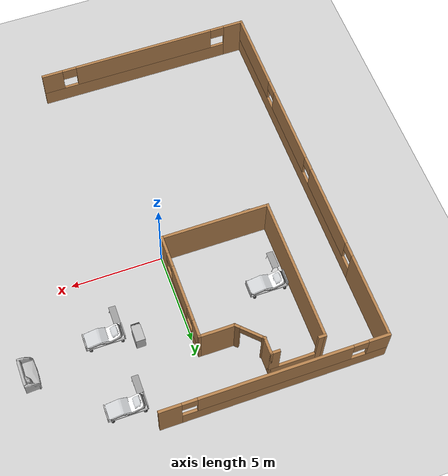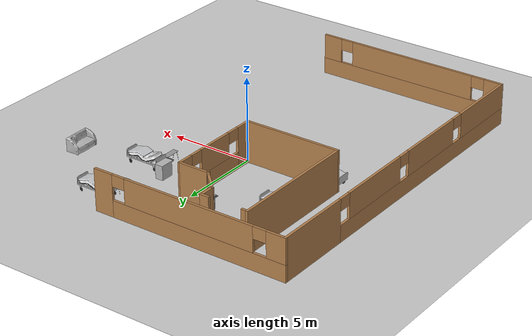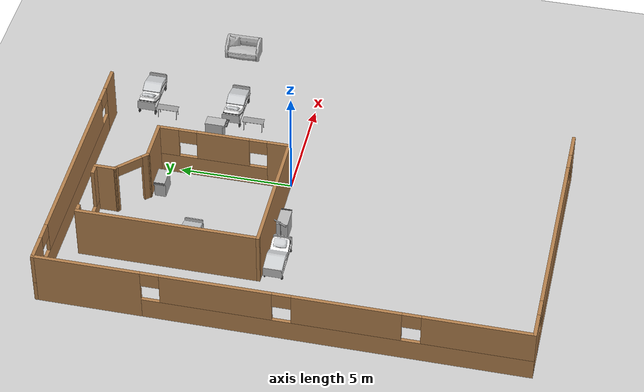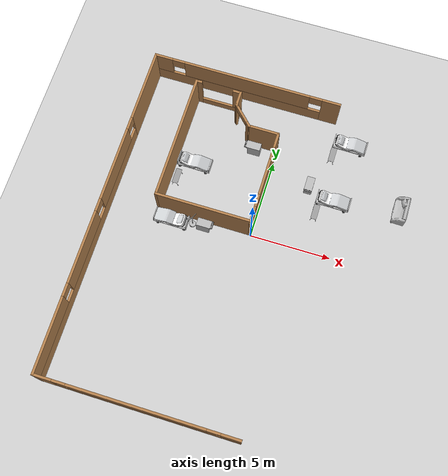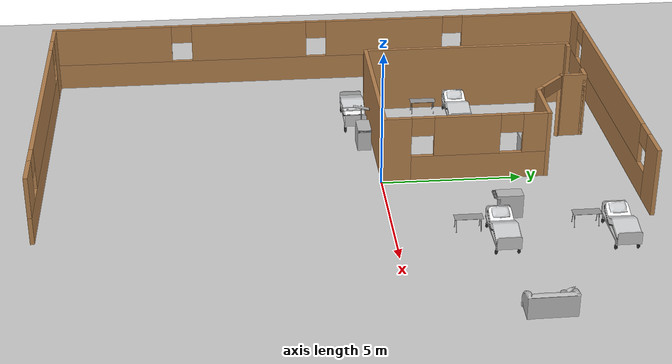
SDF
<sdf version="1.6">
 <world name="default">
  <model name="ground_plane">
   <static>1</static>
   <link name="link">
    <collision name="collision">
     <geometry><plane><normal>0 0 1</normal><size>100 100</size></plane></geometry>
     <surface>
      <contact><collide_bitmask>65535</collide_bitmask></contact>
      <friction><ode><mu>100</mu><mu2>50</mu2></ode></friction>
     </surface>
    </collision>
    <visual name="visual">
     <cast_shadows>0</cast_shadows>
     <geometry><plane><normal>0 0 1</normal><size>100 100</size></plane></geometry>
     <material>
      <script><uri>file://media/materials/scripts/gazebo.material</uri><name>Gazebo/Grey</name></script>
     </material>
    </visual>
   </link>
  </model>
  <model name="hospital_room_empty">
   <link name="Wall_0">
    <pose>-4e-06 -3.9165 0 0 -0 0</pose>
    <visual name="Wall_0_Visual">
     <pose>0 0 1.25 0 -0 0</pose>
     <geometry><box><size>6 0.15 2.5</size></box></geometry>
     <material>
      <script><uri>file://media/materials/scripts/gazebo.material</uri><name>Gazebo/Wood</name></script>
      <ambient>1 1 1 1</ambient>
     </material>
     <meta><layer>0</layer></meta>
    </visual>
    <collision name="Wall_0_Collision">
     <pose>0 0 1.25 0 -0 0</pose>
     <geometry><box><size>6 0.15 2.5</size></box></geometry>
     <surface>
      <friction>
       <ode><mu>1</mu><mu2>1</mu2><fdir1>0 0 0</fdir1><slip1>0</slip1><slip2>0</slip2></ode>
       <torsional>
        <coefficient>1</coefficient>
        <patch_radius>0</patch_radius>
        <surface_radius>0</surface_radius>
        <use_patch_radius>1</use_patch_radius>
        <ode><slip>0</slip></ode>
       </torsional>
      </friction>
      <bounce><restitution_coefficient>0</restitution_coefficient><threshold>1e+06</threshold></bounce>
      <contact>
       <collide_without_contact>0</collide_without_contact>
       <collide_without_contact_bitmask>1</collide_without_contact_bitmask>
       <collide_bitmask>1</collide_bitmask>
       <ode>
        <soft_cfm>0</soft_cfm>
        <soft_erp>0.2</soft_erp>
        <kp>1e+13</kp>
        <kd>1</kd>
        <max_vel>0.01</max_vel>
        <min_depth>0</min_depth>
       </ode>
       <bullet>
        <split_impulse>1</split_impulse>
        <split_impulse_penetration_threshold>-0.01</split_impulse_penetration_threshold>
        <soft_cfm>0</soft_cfm>
        <soft_erp>0.2</soft_erp>
        <kp>1e+13</kp>
        <kd>1</kd>
       </bullet>
      </contact>
     </surface>
    </collision>
   </link>
   <link name="Wall_3">
    <pose>-2.925 0 0 0 -0 1.5708</pose>
    <visual name="Wall_3_Visual">
     <pose>0 0 1.25 0 -0 0</pose>
     <geometry><box><size>7.98302 0.15 2.5</size></box></geometry>
     <material>
      <script><uri>file://media/materials/scripts/gazebo.material</uri><name>Gazebo/Wood</name></script>
      <ambient>1 1 1 1</ambient>
     </material>
     <meta><layer>0</layer></meta>
    </visual>
    <collision name="Wall_3_Collision">
     <pose>0 0 1.25 0 -0 0</pose>
     <geometry><box><size>7.98302 0.15 2.5</size></box></geometry>
     <surface>
      <friction>
       <ode><mu>1</mu><mu2>1</mu2><fdir1>0 0 0</fdir1><slip1>0</slip1><slip2>0</slip2></ode>
       <torsional>
        <coefficient>1</coefficient>
        <patch_radius>0</patch_radius>
        <surface_radius>0</surface_radius>
        <use_patch_radius>1</use_patch_radius>
        <ode><slip>0</slip></ode>
       </torsional>
      </friction>
      <bounce><restitution_coefficient>0</restitution_coefficient><threshold>1e+06</threshold></bounce>
      <contact>
       <collide_without_contact>0</collide_without_contact>
       <collide_without_contact_bitmask>1</collide_without_contact_bitmask>
       <collide_bitmask>1</collide_bitmask>
       <ode>
        <soft_cfm>0</soft_cfm>
        <soft_erp>0.2</soft_erp>
        <kp>1e+13</kp>
        <kd>1</kd>
        <max_vel>0.01</max_vel>
        <min_depth>0</min_depth>
       </ode>
       <bullet>
        <split_impulse>1</split_impulse>
        <split_impulse_penetration_threshold>-0.01</split_impulse_penetration_threshold>
        <soft_cfm>0</soft_cfm>
        <soft_erp>0.2</soft_erp>
        <kp>1e+13</kp>
        <kd>1</kd>
       </bullet>
      </contact>
     </surface>
    </collision>
   </link>
   <link name="Wall_4">
    <pose>-1.5 3.9165 0 0 -0 0</pose>
    <visual name="Wall_4_Visual_0">
     <pose>-1.28125 0 1.25 0 -0 0</pose>
     <geometry><box><size>0.437506 0.15 2.5</size></box></geometry>
     <material>
      <script><uri>file://media/materials/scripts/gazebo.material</uri><name>Gazebo/Wood</name></script>
      <ambient>1 1 1 1</ambient>
     </material>
     <meta><layer>0</layer></meta>
    </visual>
    <visual name="Wall_4_Visual_1">
     <pose>0.218753 0 0.25 0 -0 0</pose>
     <geometry><box><size>2.56249 0.15 0.5</size></box></geometry>
     <material>
      <script><uri>file://media/materials/scripts/gazebo.material</uri><name>Gazebo/Wood</name></script>
      <ambient>1 1 1 1</ambient>
     </material>
     <meta><layer>0</layer></meta>
    </visual>
    <visual name="Wall_4_Visual_2">
     <pose>1.21875 0 1.5 0 -0 0</pose>
     <geometry><box><size>0.562494 0.15 2</size></box></geometry>
     <material>
      <script><uri>file://media/materials/scripts/gazebo.material</uri><name>Gazebo/Wood</name></script>
      <ambient>1 1 1 1</ambient>
     </material>
     <meta><layer>0</layer></meta>
    </visual>
    <collision name="Wall_4_Collision_0">
     <pose>-1.28125 0 1.25 0 -0 0</pose>
     <geometry><box><size>0.437506 0.15 2.5</size></box></geometry>
     <surface>
      <friction>
       <ode><mu>1</mu><mu2>1</mu2><fdir1>0 0 0</fdir1><slip1>0</slip1><slip2>0</slip2></ode>
       <torsional>
        <coefficient>1</coefficient>
        <patch_radius>0</patch_radius>
        <surface_radius>0</surface_radius>
        <use_patch_radius>1</use_patch_radius>
        <ode><slip>0</slip></ode>
       </torsional>
      </friction>
      <bounce><restitution_coefficient>0</restitution_coefficient><threshold>1e+06</threshold></bounce>
      <contact>
       <collide_without_contact>0</collide_without_contact>
       <collide_without_contact_bitmask>1</collide_without_contact_bitmask>
       <collide_bitmask>1</collide_bitmask>
       <ode>
        <soft_cfm>0</soft_cfm>
        <soft_erp>0.2</soft_erp>
        <kp>1e+13</kp>
        <kd>1</kd>
        <max_vel>0.01</max_vel>
        <min_depth>0</min_depth>
       </ode>
       <bullet>
        <split_impulse>1</split_impulse>
        <split_impulse_penetration_threshold>-0.01</split_impulse_penetration_threshold>
        <soft_cfm>0</soft_cfm>
        <soft_erp>0.2</soft_erp>
        <kp>1e+13</kp>
        <kd>1</kd>
       </bullet>
      </contact>
     </surface>
    </collision>
    <collision name="Wall_4_Collision_1">
     <pose>0.218753 0 0.25 0 -0 0</pose>
     <geometry><box><size>2.56249 0.15 0.5</size></box></geometry>
     <surface>
      <friction>
       <ode><mu>1</mu><mu2>1</mu2><fdir1>0 0 0</fdir1><slip1>0</slip1><slip2>0</slip2></ode>
       <torsional>
        <coefficient>1</coefficient>
        <patch_radius>0</patch_radius>
        <surface_radius>0</surface_radius>
        <use_patch_radius>1</use_patch_radius>
        <ode><slip>0</slip></ode>
       </torsional>
      </friction>
      <bounce><restitution_coefficient>0</restitution_coefficient><threshold>1e+06</threshold></bounce>
      <contact>
       <collide_without_contact>0</collide_without_contact>
       <collide_without_contact_bitmask>1</collide_without_contact_bitmask>
       <collide_bitmask>1</collide_bitmask>
       <ode>
        <soft_cfm>0</soft_cfm>
        <soft_erp>0.2</soft_erp>
        <kp>1e+13</kp>
        <kd>1</kd>
        <max_vel>0.01</max_vel>
        <min_depth>0</min_depth>
       </ode>
       <bullet>
        <split_impulse>1</split_impulse>
        <split_impulse_penetration_threshold>-0.01</split_impulse_penetration_threshold>
        <soft_cfm>0</soft_cfm>
        <soft_erp>0.2</soft_erp>
        <kp>1e+13</kp>
        <kd>1</kd>
       </bullet>
      </contact>
     </surface>
    </collision>
    <collision name="Wall_4_Collision_2">
     <pose>1.21875 0 1.5 0 -0 0</pose>
     <geometry><box><size>0.562494 0.15 2</size></box></geometry>
     <surface>
      <friction>
       <ode><mu>1</mu><mu2>1</mu2><fdir1>0 0 0</fdir1><slip1>0</slip1><slip2>0</slip2></ode>
       <torsional>
        <coefficient>1</coefficient>
        <patch_radius>0</patch_radius>
        <surface_radius>0</surface_radius>
        <use_patch_radius>1</use_patch_radius>
        <ode><slip>0</slip></ode>
       </torsional>
      </friction>
      <bounce><restitution_coefficient>0</restitution_coefficient><threshold>1e+06</threshold></bounce>
      <contact>
       <collide_without_contact>0</collide_without_contact>
       <collide_without_contact_bitmask>1</collide_without_contact_bitmask>
       <collide_bitmask>1</collide_bitmask>
       <ode>
        <soft_cfm>0</soft_cfm>
        <soft_erp>0.2</soft_erp>
        <kp>1e+13</kp>
        <kd>1</kd>
        <max_vel>0.01</max_vel>
        <min_depth>0</min_depth>
       </ode>
       <bullet>
        <split_impulse>1</split_impulse>
        <split_impulse_penetration_threshold>-0.01</split_impulse_penetration_threshold>
        <soft_cfm>0</soft_cfm>
        <soft_erp>0.2</soft_erp>
        <kp>1e+13</kp>
        <kd>1</kd>
       </bullet>
      </contact>
     </surface>
    </collision>
   </link>
   <link name="Wall_5">
    <pose>-0.075004 3.4915 0 0 0 -1.5708</pose>
    <visual name="Wall_5_Visual">
     <pose>0 0 1.25 0 -0 0</pose>
     <geometry><box><size>1 0.15 2.5</size></box></geometry>
     <material>
      <script><uri>file://media/materials/scripts/gazebo.material</uri><name>Gazebo/Wood</name></script>
      <ambient>1 1 1 1</ambient>
     </material>
     <meta><layer>0</layer></meta>
    </visual>
    <collision name="Wall_5_Collision">
     <pose>0 0 1.25 0 -0 0</pose>
     <geometry><box><size>1 0.15 2.5</size></box></geometry>
     <surface>
      <friction>
       <ode><mu>1</mu><mu2>1</mu2><fdir1>0 0 0</fdir1><slip1>0</slip1><slip2>0</slip2></ode>
       <torsional>
        <coefficient>1</coefficient>
        <patch_radius>0</patch_radius>
        <surface_radius>0</surface_radius>
        <use_patch_radius>1</use_patch_radius>
        <ode><slip>0</slip></ode>
       </torsional>
      </friction>
      <bounce><restitution_coefficient>0</restitution_coefficient><threshold>1e+06</threshold></bounce>
      <contact>
       <collide_without_contact>0</collide_without_contact>
       <collide_without_contact_bitmask>1</collide_without_contact_bitmask>
       <collide_bitmask>1</collide_bitmask>
       <ode>
        <soft_cfm>0</soft_cfm>
        <soft_erp>0.2</soft_erp>
        <kp>1e+13</kp>
        <kd>1</kd>
        <max_vel>0.01</max_vel>
        <min_depth>0</min_depth>
       </ode>
       <bullet>
        <split_impulse>1</split_impulse>
        <split_impulse_penetration_threshold>-0.01</split_impulse_penetration_threshold>
        <soft_cfm>0</soft_cfm>
        <soft_erp>0.2</soft_erp>
        <kp>1e+13</kp>
        <kd>1</kd>
       </bullet>
      </contact>
     </surface>
    </collision>
   </link>
   <link name="Wall_7">
    <pose>2.925 -1 0 0 -0 1.5708</pose>
    <visual name="Wall_7_Visual_0">
     <pose>-2.47597 0 1.25 0 -0 0</pose>
     <geometry><box><size>1.03106 0.15 2.5</size></box></geometry>
     <material>
      <script><uri>file://media/materials/scripts/gazebo.material</uri><name>Gazebo/Wood</name></script>
      <ambient>0.921569 0.807843 0.615686 1</ambient>
     </material>
     <meta><layer>0</layer></meta>
    </visual>
    <visual name="Wall_7_Visual_1">
     <pose>0.515531 0 0.5 0 -0 0</pose>
     <geometry><box><size>4.95194 0.15 1</size></box></geometry>
     <material>
      <script><uri>file://media/materials/scripts/gazebo.material</uri><name>Gazebo/Wood</name></script>
      <ambient>0.921569 0.807843 0.615686 1</ambient>
     </material>
     <meta><layer>0</layer></meta>
    </visual>
    <visual name="Wall_7_Visual_2">
     <pose>0.016139 0 1.75 0 -0 0</pose>
     <geometry><box><size>2.35315 0.15 1.5</size></box></geometry>
     <material>
      <script><uri>file://media/materials/scripts/gazebo.material</uri><name>Gazebo/Wood</name></script>
      <ambient>0.921569 0.807843 0.615686 1</ambient>
     </material>
     <meta><layer>0</layer></meta>
    </visual>
    <visual name="Wall_7_Visual_3">
     <pose>2.49211 0 1.75 0 -0 0</pose>
     <geometry><box><size>0.998785 0.15 1.5</size></box></geometry>
     <material>
      <script><uri>file://media/materials/scripts/gazebo.material</uri><name>Gazebo/Wood</name></script>
      <ambient>0.921569 0.807843 0.615686 1</ambient>
     </material>
     <meta><layer>0</layer></meta>
    </visual>
    <visual name="Wall_7_Visual_4">
     <pose>-1.56044 0 2.15 0 -0 0</pose>
     <geometry><box><size>0.8 0.15 0.7</size></box></geometry>
     <material>
      <script><uri>file://media/materials/scripts/gazebo.material</uri><name>Gazebo/Wood</name></script>
      <ambient>0.921569 0.807843 0.615686 1</ambient>
     </material>
     <meta><layer>0</layer></meta>
    </visual>
    <visual name="Wall_7_Visual_5">
     <pose>1.59272 0 2.15 0 -0 0</pose>
     <geometry><box><size>0.8 0.15 0.7</size></box></geometry>
     <material>
      <script><uri>file://media/materials/scripts/gazebo.material</uri><name>Gazebo/Wood</name></script>
      <ambient>0.921569 0.807843 0.615686 1</ambient>
     </material>
     <meta><layer>0</layer></meta>
    </visual>
    <collision name="Wall_7_Collision_0">
     <pose>-2.47597 0 1.25 0 -0 0</pose>
     <geometry><box><size>1.03106 0.15 2.5</size></box></geometry>
     <surface>
      <friction>
       <ode><mu>1</mu><mu2>1</mu2><fdir1>0 0 0</fdir1><slip1>0</slip1><slip2>0</slip2></ode>
       <torsional>
        <coefficient>1</coefficient>
        <patch_radius>0</patch_radius>
        <surface_radius>0</surface_radius>
        <use_patch_radius>1</use_patch_radius>
        <ode><slip>0</slip></ode>
       </torsional>
      </friction>
      <bounce><restitution_coefficient>0</restitution_coefficient><threshold>1e+06</threshold></bounce>
      <contact>
       <collide_without_contact>0</collide_without_contact>
       <collide_without_contact_bitmask>1</collide_without_contact_bitmask>
       <collide_bitmask>1</collide_bitmask>
       <ode>
        <soft_cfm>0</soft_cfm>
        <soft_erp>0.2</soft_erp>
        <kp>1e+13</kp>
        <kd>1</kd>
        <max_vel>0.01</max_vel>
        <min_depth>0</min_depth>
       </ode>
       <bullet>
        <split_impulse>1</split_impulse>
        <split_impulse_penetration_threshold>-0.01</split_impulse_penetration_threshold>
        <soft_cfm>0</soft_cfm>
        <soft_erp>0.2</soft_erp>
        <kp>1e+13</kp>
        <kd>1</kd>
       </bullet>
      </contact>
     </surface>
    </collision>
    <collision name="Wall_7_Collision_1">
     <pose>0.515531 0 0.5 0 -0 0</pose>
     <geometry><box><size>4.95194 0.15 1</size></box></geometry>
     <surface>
      <friction>
       <ode><mu>1</mu><mu2>1</mu2><fdir1>0 0 0</fdir1><slip1>0</slip1><slip2>0</slip2></ode>
       <torsional>
        <coefficient>1</coefficient>
        <patch_radius>0</patch_radius>
        <surface_radius>0</surface_radius>
        <use_patch_radius>1</use_patch_radius>
        <ode><slip>0</slip></ode>
       </torsional>
      </friction>
      <bounce><restitution_coefficient>0</restitution_coefficient><threshold>1e+06</threshold></bounce>
      <contact>
       <collide_without_contact>0</collide_without_contact>
       <collide_without_contact_bitmask>1</collide_without_contact_bitmask>
       <collide_bitmask>1</collide_bitmask>
       <ode>
        <soft_cfm>0</soft_cfm>
        <soft_erp>0.2</soft_erp>
        <kp>1e+13</kp>
        <kd>1</kd>
        <max_vel>0.01</max_vel>
        <min_depth>0</min_depth>
       </ode>
       <bullet>
        <split_impulse>1</split_impulse>
        <split_impulse_penetration_threshold>-0.01</split_impulse_penetration_threshold>
        <soft_cfm>0</soft_cfm>
        <soft_erp>0.2</soft_erp>
        <kp>1e+13</kp>
        <kd>1</kd>
       </bullet>
      </contact>
     </surface>
    </collision>
    <collision name="Wall_7_Collision_2">
     <pose>0.016139 0 1.75 0 -0 0</pose>
     <geometry><box><size>2.35315 0.15 1.5</size></box></geometry>
     <surface>
      <friction>
       <ode><mu>1</mu><mu2>1</mu2><fdir1>0 0 0</fdir1><slip1>0</slip1><slip2>0</slip2></ode>
       <torsional>
        <coefficient>1</coefficient>
        <patch_radius>0</patch_radius>
        <surface_radius>0</surface_radius>
        <use_patch_radius>1</use_patch_radius>
        <ode><slip>0</slip></ode>
       </torsional>
      </friction>
      <bounce><restitution_coefficient>0</restitution_coefficient><threshold>1e+06</threshold></bounce>
      <contact>
       <collide_without_contact>0</collide_without_contact>
       <collide_without_contact_bitmask>1</collide_without_contact_bitmask>
       <collide_bitmask>1</collide_bitmask>
       <ode>
        <soft_cfm>0</soft_cfm>
        <soft_erp>0.2</soft_erp>
        <kp>1e+13</kp>
        <kd>1</kd>
        <max_vel>0.01</max_vel>
        <min_depth>0</min_depth>
       </ode>
       <bullet>
        <split_impulse>1</split_impulse>
        <split_impulse_penetration_threshold>-0.01</split_impulse_penetration_threshold>
        <soft_cfm>0</soft_cfm>
        <soft_erp>0.2</soft_erp>
        <kp>1e+13</kp>
        <kd>1</kd>
       </bullet>
      </contact>
     </surface>
    </collision>
    <collision name="Wall_7_Collision_3">
     <pose>2.49211 0 1.75 0 -0 0</pose>
     <geometry><box><size>0.998785 0.15 1.5</size></box></geometry>
     <surface>
      <friction>
       <ode><mu>1</mu><mu2>1</mu2><fdir1>0 0 0</fdir1><slip1>0</slip1><slip2>0</slip2></ode>
       <torsional>
        <coefficient>1</coefficient>
        <patch_radius>0</patch_radius>
        <surface_radius>0</surface_radius>
        <use_patch_radius>1</use_patch_radius>
        <ode><slip>0</slip></ode>
       </torsional>
      </friction>
      <bounce><restitution_coefficient>0</restitution_coefficient><threshold>1e+06</threshold></bounce>
      <contact>
       <collide_without_contact>0</collide_without_contact>
       <collide_without_contact_bitmask>1</collide_without_contact_bitmask>
       <collide_bitmask>1</collide_bitmask>
       <ode>
        <soft_cfm>0</soft_cfm>
        <soft_erp>0.2</soft_erp>
        <kp>1e+13</kp>
        <kd>1</kd>
        <max_vel>0.01</max_vel>
        <min_depth>0</min_depth>
       </ode>
       <bullet>
        <split_impulse>1</split_impulse>
        <split_impulse_penetration_threshold>-0.01</split_impulse_penetration_threshold>
        <soft_cfm>0</soft_cfm>
        <soft_erp>0.2</soft_erp>
        <kp>1e+13</kp>
        <kd>1</kd>
       </bullet>
      </contact>
     </surface>
    </collision>
    <collision name="Wall_7_Collision_4">
     <pose>-1.56044 0 2.15 0 -0 0</pose>
     <geometry><box><size>0.8 0.15 0.7</size></box></geometry>
     <surface>
      <friction>
       <ode><mu>1</mu><mu2>1</mu2><fdir1>0 0 0</fdir1><slip1>0</slip1><slip2>0</slip2></ode>
       <torsional>
        <coefficient>1</coefficient>
        <patch_radius>0</patch_radius>
        <surface_radius>0</surface_radius>
        <use_patch_radius>1</use_patch_radius>
        <ode><slip>0</slip></ode>
       </torsional>
      </friction>
      <bounce><restitution_coefficient>0</restitution_coefficient><threshold>1e+06</threshold></bounce>
      <contact>
       <collide_without_contact>0</collide_without_contact>
       <collide_without_contact_bitmask>1</collide_without_contact_bitmask>
       <collide_bitmask>1</collide_bitmask>
       <ode>
        <soft_cfm>0</soft_cfm>
        <soft_erp>0.2</soft_erp>
        <kp>1e+13</kp>
        <kd>1</kd>
        <max_vel>0.01</max_vel>
        <min_depth>0</min_depth>
       </ode>
       <bullet>
        <split_impulse>1</split_impulse>
        <split_impulse_penetration_threshold>-0.01</split_impulse_penetration_threshold>
        <soft_cfm>0</soft_cfm>
        <soft_erp>0.2</soft_erp>
        <kp>1e+13</kp>
        <kd>1</kd>
       </bullet>
      </contact>
     </surface>
    </collision>
    <collision name="Wall_7_Collision_5">
     <pose>1.59272 0 2.15 0 -0 0</pose>
     <geometry><box><size>0.8 0.15 0.7</size></box></geometry>
     <surface>
      <friction>
       <ode><mu>1</mu><mu2>1</mu2><fdir1>0 0 0</fdir1><slip1>0</slip1><slip2>0</slip2></ode>
       <torsional>
        <coefficient>1</coefficient>
        <patch_radius>0</patch_radius>
        <surface_radius>0</surface_radius>
        <use_patch_radius>1</use_patch_radius>
        <ode><slip>0</slip></ode>
       </torsional>
      </friction>
      <bounce><restitution_coefficient>0</restitution_coefficient><threshold>1e+06</threshold></bounce>
      <contact>
       <collide_without_contact>0</collide_without_contact>
       <collide_without_contact_bitmask>1</collide_without_contact_bitmask>
       <collide_bitmask>1</collide_bitmask>
       <ode>
        <soft_cfm>0</soft_cfm>
        <soft_erp>0.2</soft_erp>
        <kp>1e+13</kp>
        <kd>1</kd>
        <max_vel>0.01</max_vel>
        <min_depth>0</min_depth>
       </ode>
       <bullet>
        <split_impulse>1</split_impulse>
        <split_impulse_penetration_threshold>-0.01</split_impulse_penetration_threshold>
        <soft_cfm>0</soft_cfm>
        <soft_erp>0.2</soft_erp>
        <kp>1e+13</kp>
        <kd>1</kd>
       </bullet>
      </contact>
     </surface>
    </collision>
   </link>
   <link name="Wall_8">
    <pose>2 1.9166 0 0 -0 3.14148</pose>
    <visual name="Wall_8_Visual">
     <pose>0 0 1.25 0 -0 0</pose>
     <geometry><box><size>2 0.15 2.5</size></box></geometry>
     <material>
      <script><uri>file://media/materials/scripts/gazebo.material</uri><name>Gazebo/Wood</name></script>
      <ambient>1 1 1 1</ambient>
     </material>
     <meta><layer>0</layer></meta>
    </visual>
    <collision name="Wall_8_Collision">
     <pose>0 0 1.25 0 -0 0</pose>
     <geometry><box><size>2 0.15 2.5</size></box></geometry>
     <surface>
      <friction>
       <ode><mu>1</mu><mu2>1</mu2><fdir1>0 0 0</fdir1><slip1>0</slip1><slip2>0</slip2></ode>
       <torsional>
        <coefficient>1</coefficient>
        <patch_radius>0</patch_radius>
        <surface_radius>0</surface_radius>
        <use_patch_radius>1</use_patch_radius>
        <ode><slip>0</slip></ode>
       </torsional>
      </friction>
      <bounce><restitution_coefficient>0</restitution_coefficient><threshold>1e+06</threshold></bounce>
      <contact>
       <collide_without_contact>0</collide_without_contact>
       <collide_without_contact_bitmask>1</collide_without_contact_bitmask>
       <collide_bitmask>1</collide_bitmask>
       <ode>
        <soft_cfm>0</soft_cfm>
        <soft_erp>0.2</soft_erp>
        <kp>1e+13</kp>
        <kd>1</kd>
        <max_vel>0.01</max_vel>
        <min_depth>0</min_depth>
       </ode>
       <bullet>
        <split_impulse>1</split_impulse>
        <split_impulse_penetration_threshold>-0.01</split_impulse_penetration_threshold>
        <soft_cfm>0</soft_cfm>
        <soft_erp>0.2</soft_erp>
        <kp>1e+13</kp>
        <kd>1</kd>
       </bullet>
      </contact>
     </surface>
    </collision>
   </link>
   <link name="Wall_9">
    <pose>0.499996 2.4916 0 0 -0 2.35628</pose>
    <visual name="Wall_9_Visual_1">
     <pose>0.785148 0 1.25 0 -0 0</pose>
     <geometry><box><size>0.205905 0.15 2.5</size></box></geometry>
     <material>
      <script><uri>file://media/materials/scripts/gazebo.material</uri><name>Gazebo/Wood</name></script>
      <ambient>1 1 1 1</ambient>
     </material>
     <meta><layer>0</layer></meta>
    </visual>
    <visual name="Wall_9_Visual_0">
     <pose>-0.702952 0 1.25 0 -0 0</pose>
     <geometry><box><size>0.370295 0.15 2.5</size></box></geometry>
     <material>
      <script><uri>file://media/materials/scripts/gazebo.material</uri><name>Gazebo/Wood</name></script>
      <ambient>1 1 1 1</ambient>
     </material>
     <meta><layer>0</layer></meta>
    </visual>
    <visual name="Wall_9_Visual_2">
     <pose>0.082195 0 2.25 0 -0 0</pose>
     <geometry><box><size>1.2 0.15 0.5</size></box></geometry>
     <material>
      <script><uri>file://media/materials/scripts/gazebo.material</uri><name>Gazebo/Wood</name></script>
      <ambient>1 1 1 1</ambient>
     </material>
     <meta><layer>0</layer></meta>
    </visual>
    <collision name="Wall_9_Collision_0">
     <pose>-0.702952 0 1.25 0 -0 0</pose>
     <geometry><box><size>0.370295 0.15 2.5</size></box></geometry>
     <surface>
      <friction>
       <ode><mu>1</mu><mu2>1</mu2><fdir1>0 0 0</fdir1><slip1>0</slip1><slip2>0</slip2></ode>
       <torsional>
        <coefficient>1</coefficient>
        <patch_radius>0</patch_radius>
        <surface_radius>0</surface_radius>
        <use_patch_radius>1</use_patch_radius>
        <ode><slip>0</slip></ode>
       </torsional>
      </friction>
      <bounce><restitution_coefficient>0</restitution_coefficient><threshold>1e+06</threshold></bounce>
      <contact>
       <collide_without_contact>0</collide_without_contact>
       <collide_without_contact_bitmask>1</collide_without_contact_bitmask>
       <collide_bitmask>1</collide_bitmask>
       <ode>
        <soft_cfm>0</soft_cfm>
        <soft_erp>0.2</soft_erp>
        <kp>1e+13</kp>
        <kd>1</kd>
        <max_vel>0.01</max_vel>
        <min_depth>0</min_depth>
       </ode>
       <bullet>
        <split_impulse>1</split_impulse>
        <split_impulse_penetration_threshold>-0.01</split_impulse_penetration_threshold>
        <soft_cfm>0</soft_cfm>
        <soft_erp>0.2</soft_erp>
        <kp>1e+13</kp>
        <kd>1</kd>
       </bullet>
      </contact>
     </surface>
    </collision>
    <collision name="Wall_9_Collision_1">
     <pose>0.785148 0 1.25 0 -0 0</pose>
     <geometry><box><size>0.205905 0.15 2.5</size></box></geometry>
     <surface>
      <friction>
       <ode><mu>1</mu><mu2>1</mu2><fdir1>0 0 0</fdir1><slip1>0</slip1><slip2>0</slip2></ode>
       <torsional>
        <coefficient>1</coefficient>
        <patch_radius>0</patch_radius>
        <surface_radius>0</surface_radius>
        <use_patch_radius>1</use_patch_radius>
        <ode><slip>0</slip></ode>
       </torsional>
      </friction>
      <bounce><restitution_coefficient>0</restitution_coefficient><threshold>1e+06</threshold></bounce>
      <contact>
       <collide_without_contact>0</collide_without_contact>
       <collide_without_contact_bitmask>1</collide_without_contact_bitmask>
       <collide_bitmask>1</collide_bitmask>
       <ode>
        <soft_cfm>0</soft_cfm>
        <soft_erp>0.2</soft_erp>
        <kp>1e+13</kp>
        <kd>1</kd>
        <max_vel>0.01</max_vel>
        <min_depth>0</min_depth>
       </ode>
       <bullet>
        <split_impulse>1</split_impulse>
        <split_impulse_penetration_threshold>-0.01</split_impulse_penetration_threshold>
        <soft_cfm>0</soft_cfm>
        <soft_erp>0.2</soft_erp>
        <kp>1e+13</kp>
        <kd>1</kd>
       </bullet>
      </contact>
     </surface>
    </collision>
    <collision name="Wall_9_Collision_2">
     <pose>0.082195 0 2.25 0 -0 0</pose>
     <geometry><box><size>1.2 0.15 0.5</size></box></geometry>
     <surface>
      <friction>
       <ode><mu>1</mu><mu2>1</mu2><fdir1>0 0 0</fdir1><slip1>0</slip1><slip2>0</slip2></ode>
       <torsional>
        <coefficient>1</coefficient>
        <patch_radius>0</patch_radius>
        <surface_radius>0</surface_radius>
        <use_patch_radius>1</use_patch_radius>
        <ode><slip>0</slip></ode>
       </torsional>
      </friction>
      <bounce><restitution_coefficient>0</restitution_coefficient><threshold>1e+06</threshold></bounce>
      <contact>
       <collide_without_contact>0</collide_without_contact>
       <collide_without_contact_bitmask>1</collide_without_contact_bitmask>
       <collide_bitmask>1</collide_bitmask>
       <ode>
        <soft_cfm>0</soft_cfm>
        <soft_erp>0.2</soft_erp>
        <kp>1e+13</kp>
        <kd>1</kd>
        <max_vel>0.01</max_vel>
        <min_depth>0</min_depth>
       </ode>
       <bullet>
        <split_impulse>1</split_impulse>
        <split_impulse_penetration_threshold>-0.01</split_impulse_penetration_threshold>
        <soft_cfm>0</soft_cfm>
        <soft_erp>0.2</soft_erp>
        <kp>1e+13</kp>
        <kd>1</kd>
       </bullet>
      </contact>
     </surface>
    </collision>
   </link>
   <static>1</static>
   <pose>-3.00848 4.0001 0 0 -0 0</pose>
  </model>
  <model name="hospital_corridor_2">
   <pose>-2.97557 -1.50857 0 0 -0 0</pose>
   <link name="Wall_12">
    <pose>1e-06 10.425 0 0 -0 3.14159</pose>
    <visual name="Wall_12_Visual_0">
     <pose>-5.44242 0 1.25 0 -0 0</pose>
     <geometry><box><size>1.19015 0.15 2.5</size></box></geometry>
     <material>
      <script><uri>file://media/materials/scripts/gazebo.material</uri><name>Gazebo/Wood</name></script>
      <ambient>1 1 1 1</ambient>
     </material>
     <meta><layer>0</layer></meta>
    </visual>
    <collision name="Wall_12_Collision_0">
     <geometry><box><size>1.19015 0.15 2.5</size></box></geometry>
     <pose>-5.44242 0 1.25 0 -0 0</pose>
    </collision>
    <visual name="Wall_12_Visual_1">
     <pose>0.595076 0 0.5 0 -0 0</pose>
     <geometry><box><size>10.8848 0.15 1</size></box></geometry>
     <material>
      <script><uri>file://media/materials/scripts/gazebo.material</uri><name>Gazebo/Wood</name></script>
      <ambient>1 1 1 1</ambient>
     </material>
     <meta><layer>0</layer></meta>
    </visual>
    <collision name="Wall_12_Collision_1">
     <geometry><box><size>10.8848 0.15 1</size></box></geometry>
     <pose>0.595076 0 0.5 0 -0 0</pose>
    </collision>
    <visual name="Wall_12_Visual_2">
     <pose>0.005295 0 1.75 0 -0 0</pose>
     <geometry><box><size>8.10528 0.15 1.5</size></box></geometry>
     <material>
      <script><uri>file://media/materials/scripts/gazebo.material</uri><name>Gazebo/Wood</name></script>
      <ambient>1 1 1 1</ambient>
     </material>
     <meta><layer>0</layer></meta>
    </visual>
    <collision name="Wall_12_Collision_2">
     <geometry><box><size>8.10528 0.15 1.5</size></box></geometry>
     <pose>0.005295 0 1.75 0 -0 0</pose>
    </collision>
    <visual name="Wall_12_Visual_3">
     <pose>5.44772 0 1.75 0 -0 0</pose>
     <geometry><box><size>1.17956 0.15 1.5</size></box></geometry>
     <material>
      <script><uri>file://media/materials/scripts/gazebo.material</uri><name>Gazebo/Wood</name></script>
      <ambient>1 1 1 1</ambient>
     </material>
     <meta><layer>0</layer></meta>
    </visual>
    <collision name="Wall_12_Collision_3">
     <geometry><box><size>1.17956 0.15 1.5</size></box></geometry>
     <pose>5.44772 0 1.75 0 -0 0</pose>
    </collision>
    <visual name="Wall_12_Visual_4">
     <pose>-4.44735 0 2.15 0 -0 0</pose>
     <geometry><box><size>0.8 0.15 0.7</size></box></geometry>
     <material>
      <script><uri>file://media/materials/scripts/gazebo.material</uri><name>Gazebo/Wood</name></script>
      <ambient>1 1 1 1</ambient>
     </material>
     <meta><layer>0</layer></meta>
    </visual>
    <collision name="Wall_12_Collision_4">
     <geometry><box><size>0.8 0.15 0.7</size></box></geometry>
     <pose>-4.44735 0 2.15 0 -0 0</pose>
    </collision>
    <visual name="Wall_12_Visual_5">
     <pose>4.45794 0 2.15 0 -0 0</pose>
     <geometry><box><size>0.8 0.15 0.7</size></box></geometry>
     <material>
      <script><uri>file://media/materials/scripts/gazebo.material</uri><name>Gazebo/Wood</name></script>
      <ambient>1 1 1 1</ambient>
     </material>
     <meta><layer>0</layer></meta>
    </visual>
    <collision name="Wall_12_Collision_5">
     <geometry><box><size>0.8 0.15 0.7</size></box></geometry>
     <pose>4.45794 0 2.15 0 -0 0</pose>
    </collision>
   </link>
   <link name="Wall_13">
    <pose>-5.9625 0 0 0 -0 -1.5708</pose>
    <visual name="Wall_13_Visual_0">
     <pose>-8.17263 0 1.25 0 -0 0</pose>
     <geometry><box><size>4.65474 0.15 2.5</size></box></geometry>
     <material>
      <script><uri>file://media/materials/scripts/gazebo.material</uri><name>Gazebo/Wood</name></script>
      <ambient>1 1 1 1</ambient>
     </material>
     <meta><layer>0</layer></meta>
    </visual>
    <collision name="Wall_13_Collision_0">
     <geometry><box><size>4.65474 0.15 2.5</size></box></geometry>
     <pose>-8.17263 0 1.25 0 -0 0</pose>
    </collision>
    <visual name="Wall_13_Visual_1">
     <pose>2.32737 0 0.5 0 -0 0</pose>
     <geometry><box><size>16.3453 0.15 1</size></box></geometry>
     <material>
      <script><uri>file://media/materials/scripts/gazebo.material</uri><name>Gazebo/Wood</name></script>
      <ambient>1 1 1 1</ambient>
     </material>
     <meta><layer>0</layer></meta>
    </visual>
    <collision name="Wall_13_Collision_1">
     <geometry><box><size>16.3453 0.15 1</size></box></geometry>
     <pose>2.32737 0 0.5 0 -0 0</pose>
    </collision>
    <visual name="Wall_13_Visual_2">
     <pose>-2.68115 0 1.75 0 -0 0</pose>
     <geometry><box><size>4.72821 0.15 1.5</size></box></geometry>
     <material>
      <script><uri>file://media/materials/scripts/gazebo.material</uri><name>Gazebo/Wood</name></script>
      <ambient>1 1 1 1</ambient>
     </material>
     <meta><layer>0</layer></meta>
    </visual>
    <collision name="Wall_13_Collision_2">
     <geometry><box><size>4.72821 0.15 1.5</size></box></geometry>
     <pose>-2.68115 0 1.75 0 -0 0</pose>
    </collision>
    <visual name="Wall_13_Visual_3">
     <pose>2.76611 0 1.75 0 -0 0</pose>
     <geometry><box><size>4.5663 0.15 1.5</size></box></geometry>
     <material>
      <script><uri>file://media/materials/scripts/gazebo.material</uri><name>Gazebo/Wood</name></script>
      <ambient>1 1 1 1</ambient>
     </material>
     <meta><layer>0</layer></meta>
    </visual>
    <collision name="Wall_13_Collision_3">
     <geometry><box><size>4.5663 0.15 1.5</size></box></geometry>
     <pose>2.76611 0 1.75 0 -0 0</pose>
    </collision>
    <visual name="Wall_13_Visual_4">
     <pose>8.17463 0 1.75 0 -0 0</pose>
     <geometry><box><size>4.65074 0.15 1.5</size></box></geometry>
     <material>
      <script><uri>file://media/materials/scripts/gazebo.material</uri><name>Gazebo/Wood</name></script>
      <ambient>1 1 1 1</ambient>
     </material>
     <meta><layer>0</layer></meta>
    </visual>
    <collision name="Wall_13_Collision_4">
     <geometry><box><size>4.65074 0.15 1.5</size></box></geometry>
     <pose>8.17463 0 1.75 0 -0 0</pose>
    </collision>
    <visual name="Wall_13_Visual_5">
     <pose>-5.44526 0 2.15 0 -0 0</pose>
     <geometry><box><size>0.8 0.15 0.7</size></box></geometry>
     <material>
      <script><uri>file://media/materials/scripts/gazebo.material</uri><name>Gazebo/Wood</name></script>
      <ambient>1 1 1 1</ambient>
     </material>
     <meta><layer>0</layer></meta>
    </visual>
    <collision name="Wall_13_Collision_5">
     <geometry><box><size>0.8 0.15 0.7</size></box></geometry>
     <pose>-5.44526 0 2.15 0 -0 0</pose>
    </collision>
    <visual name="Wall_13_Visual_6">
     <pose>0.082958 0 2.15 0 -0 0</pose>
     <geometry><box><size>0.8 0.15 0.7</size></box></geometry>
     <material>
      <script><uri>file://media/materials/scripts/gazebo.material</uri><name>Gazebo/Wood</name></script>
      <ambient>1 1 1 1</ambient>
     </material>
     <meta><layer>0</layer></meta>
    </visual>
    <collision name="Wall_13_Collision_6">
     <geometry><box><size>0.8 0.15 0.7</size></box></geometry>
     <pose>0.082958 0 2.15 0 -0 0</pose>
    </collision>
    <visual name="Wall_13_Visual_7">
     <pose>5.44926 0 2.15 0 -0 0</pose>
     <geometry><box><size>0.8 0.15 0.7</size></box></geometry>
     <material>
      <script><uri>file://media/materials/scripts/gazebo.material</uri><name>Gazebo/Wood</name></script>
      <ambient>1 1 1 1</ambient>
     </material>
     <meta><layer>0</layer></meta>
    </visual>
    <collision name="Wall_13_Collision_7">
     <geometry><box><size>0.8 0.15 0.7</size></box></geometry>
     <pose>5.44926 0 2.15 0 -0 0</pose>
    </collision>
   </link>
   <link name="Wall_14">
    <pose>1e-06 -10.425 0 0 -0 0</pose>
    <visual name="Wall_14_Visual_0">
     <pose>-5.44772 0 1.25 0 -0 0</pose>
     <geometry><box><size>1.17956 0.15 2.5</size></box></geometry>
     <material>
      <script><uri>file://media/materials/scripts/gazebo.material</uri><name>Gazebo/Wood</name></script>
      <ambient>1 1 1 1</ambient>
     </material>
     <meta><layer>0</layer></meta>
    </visual>
    <collision name="Wall_14_Collision_0">
     <geometry><box><size>1.17956 0.15 2.5</size></box></geometry>
     <pose>-5.44772 0 1.25 0 -0 0</pose>
    </collision>
    <visual name="Wall_14_Visual_1">
     <pose>0.589782 0 0.5 0 -0 0</pose>
     <geometry><box><size>10.8954 0.15 1</size></box></geometry>
     <material>
      <script><uri>file://media/materials/scripts/gazebo.material</uri><name>Gazebo/Wood</name></script>
      <ambient>1 1 1 1</ambient>
     </material>
     <meta><layer>0</layer></meta>
    </visual>
    <collision name="Wall_14_Collision_1">
     <geometry><box><size>10.8954 0.15 1</size></box></geometry>
     <pose>0.589782 0 0.5 0 -0 0</pose>
    </collision>
    <visual name="Wall_14_Visual_2">
     <pose>-0.005295 0 1.75 0 -0 0</pose>
     <geometry><box><size>8.10528 0.15 1.5</size></box></geometry>
     <material>
      <script><uri>file://media/materials/scripts/gazebo.material</uri><name>Gazebo/Wood</name></script>
      <ambient>1 1 1 1</ambient>
     </material>
     <meta><layer>0</layer></meta>
    </visual>
    <collision name="Wall_14_Collision_2">
     <geometry><box><size>8.10528 0.15 1.5</size></box></geometry>
     <pose>-0.005295 0 1.75 0 -0 0</pose>
    </collision>
    <visual name="Wall_14_Visual_3">
     <pose>5.44242 0 1.75 0 -0 0</pose>
     <geometry><box><size>1.19015 0.15 1.5</size></box></geometry>
     <material>
      <script><uri>file://media/materials/scripts/gazebo.material</uri><name>Gazebo/Wood</name></script>
      <ambient>1 1 1 1</ambient>
     </material>
     <meta><layer>0</layer></meta>
    </visual>
    <collision name="Wall_14_Collision_3">
     <geometry><box><size>1.19015 0.15 1.5</size></box></geometry>
     <pose>5.44242 0 1.75 0 -0 0</pose>
    </collision>
    <visual name="Wall_14_Visual_4">
     <pose>-4.45794 0 2.15 0 -0 0</pose>
     <geometry><box><size>0.8 0.15 0.7</size></box></geometry>
     <material>
      <script><uri>file://media/materials/scripts/gazebo.material</uri><name>Gazebo/Wood</name></script>
      <ambient>1 1 1 1</ambient>
     </material>
     <meta><layer>0</layer></meta>
    </visual>
    <collision name="Wall_14_Collision_4">
     <geometry><box><size>0.8 0.15 0.7</size></box></geometry>
     <pose>-4.45794 0 2.15 0 -0 0</pose>
    </collision>
    <visual name="Wall_14_Visual_5">
     <pose>4.44735 0 2.15 0 -0 0</pose>
     <geometry><box><size>0.8 0.15 0.7</size></box></geometry>
     <material>
      <script><uri>file://media/materials/scripts/gazebo.material</uri><name>Gazebo/Wood</name></script>
      <ambient>1 1 1 1</ambient>
     </material>
     <meta><layer>0</layer></meta>
    </visual>
    <collision name="Wall_14_Collision_5">
     <geometry><box><size>0.8 0.15 0.7</size></box></geometry>
     <pose>4.44735 0 2.15 0 -0 0</pose>
    </collision>
   </link>
   <static>1</static>
  </model>
  <model name="ikea_desk">
   <static>1</static>
   <link name="link">
    <inertial>
     <mass>5</mass>
     <inertia><ixx>1</ixx><ixy>0</ixy><ixz>0</ixz><iyy>1</iyy><iyz>0</iyz><izz>1</izz></inertia>
    </inertial>
    <collision name="collision">
     <pose>0 0.03 0.227 0 -0 0</pose>
     <geometry><box><size>0.416 0.98 0.455</size></box></geometry>
    </collision>
    <visual name="visual"><geometry><mesh><uri>model://ikea_desk/ikea_desk.dae</uri></mesh></geometry></visual>
   </link>
   <pose>-5.47681 2.23884 0 0 -0 0</pose>
  </model>
  <model name="service_cart">
   <static>0</static>
   <link name="link">
    <inertial>
     <mass>10</mass>
     <inertia><ixx>1</ixx><ixy>0</ixy><ixz>0</ixz><iyy>1</iyy><iyz>0</iyz><izz>1</izz></inertia>
    </inertial>
    <collision name="collision">
     <geometry><mesh><uri>model://service_cart/service_cart_collision.dae</uri></mesh></geometry>
    </collision>
    <visual name="visual">
     <geometry><mesh><uri>model://service_cart/service_cart.dae</uri></mesh></geometry>
    </visual>
   </link>
   <pose>-1.48841 5.45582 -0.000848 0 -0 -1.56591</pose>
  </model>
  <model name="round_sofa_2">
   <static>1</static>
   <link name="link">
    <inertial>
     <mass>5</mass>
     <inertia><ixx>1</ixx><ixy>0</ixy><ixz>0</ixz><iyy>1</iyy><iyz>0</iyz><izz>1</izz></inertia>
    </inertial>
    <collision name="collision">
     <pose>-0.09 -0.05 0.425 0 -0 0</pose>
     <geometry><box><size>1.65 0.85 0.85</size></box></geometry>
    </collision>
    <visual name="visual"><geometry><mesh><uri>model://round_sofa/round_sofa.dae</uri></mesh></geometry></visual>
   </link>
   <pose>8.41152 4.06494 0.003564 0 0 -1.56248</pose>
  </model>
  <model name="ikea_desk_0">
   <static>1</static>
   <link name="link">
    <inertial>
     <mass>5</mass>
     <inertia><ixx>1</ixx><ixy>0</ixy><ixz>0</ixz><iyy>1</iyy><iyz>0</iyz><izz>1</izz></inertia>
    </inertial>
    <collision name="collision">
     <pose>0 0.03 0.227 0 -0 0</pose>
     <geometry><box><size>0.416 0.98 0.455</size></box></geometry>
    </collision>
    <visual name="visual"><geometry><mesh><uri>model://ikea_desk/ikea_desk.dae</uri></mesh></geometry></visual>
   </link>
   <pose>3.41762 6.48585 0 0 -0 0</pose>
  </model>
  <model name="ikea_desk_1">
   <static>1</static>
   <link name="link">
    <inertial>
     <mass>5</mass>
     <inertia><ixx>1</ixx><ixy>0</ixy><ixz>0</ixz><iyy>1</iyy><iyz>0</iyz><izz>1</izz></inertia>
    </inertial>
    <collision name="collision">
     <pose>0 0.03 0.227 0 -0 0</pose>
     <geometry><box><size>0.416 0.98 0.455</size></box></geometry>
    </collision>
    <visual name="visual"><geometry><mesh><uri>model://ikea_desk/ikea_desk.dae</uri></mesh></geometry></visual>
   </link>
   <pose>3.39039 2.48058 0 0 -0 0</pose>
  </model>
  <model name="iv_pole_6">
   <static>0</static>
   <link name="link">
    <inertial>
     <mass>5</mass>
     <inertia><ixx>1</ixx><ixy>0</ixy><ixz>0</ixz><iyy>1</iyy><iyz>0</iyz><izz>1</izz></inertia>
    </inertial>
    <collision name="collision">
     <geometry><mesh><uri>model://iv_pole/iv_pole_collision.dae</uri></mesh></geometry>
    </collision>
    <visual name="visual"><geometry><mesh><uri>model://iv_pole/iv_pole.dae</uri></mesh></geometry></visual>
   </link>
   <pose>-3.62636 -0.267732 0.008029 -1e-06 -1e-06 0.026408</pose>
  </model>
  <model name="service_cart_7">
   <static>0</static>
   <link name="link">
    <inertial>
     <mass>10</mass>
     <inertia><ixx>1</ixx><ixy>0</ixy><ixz>0</ixz><iyy>1</iyy><iyz>0</iyz><izz>1</izz></inertia>
    </inertial>
    <collision name="collision">
     <geometry><mesh><uri>model://service_cart/service_cart_collision.dae</uri></mesh></geometry>
    </collision>
    <visual name="visual">
     <geometry><mesh><uri>model://service_cart/service_cart.dae</uri></mesh></geometry>
    </visual>
   </link>
   <pose>-2.83422 -0.294806 -0.000842 -1.2e-05 -0 1.57231</pose>
  </model>
  <model name="service_cart_8">
   <static>0</static>
   <link name="link">
    <inertial>
     <mass>10</mass>
     <inertia><ixx>1</ixx><ixy>0</ixy><ixz>0</ixz><iyy>1</iyy><iyz>0</iyz><izz>1</izz></inertia>
    </inertial>
    <collision name="collision">
     <geometry><mesh><uri>model://service_cart/service_cart_collision.dae</uri></mesh></geometry>
    </collision>
    <visual name="visual">
     <geometry><mesh><uri>model://service_cart/service_cart.dae</uri></mesh></geometry>
    </visual>
   </link>
   <pose>2.59325 4.01449 -0.000842 0 9e-06 0</pose>
  </model>
  <model name="hospital_bed">
   <static>0</static>
   <link name="link">
    <inertial>
     <mass>20</mass>
     <inertia><ixx>1</ixx><ixy>0</ixy><ixz>0</ixz><iyy>1</iyy><iyz>0</iyz><izz>1</izz></inertia>
    </inertial>
    <collision name="collision">
     <geometry><mesh><uri>model://hospital_bed/hospital_bed_collision.dae</uri></mesh></geometry>
    </collision>
    <visual name="visual">
     <geometry><mesh><uri>model://hospital_bed/hospital_bed.dae</uri></mesh></geometry>
    </visual>
   </link>
   <pose>-4.69213 3.47418 -0.001742 0 0.000955 3.13543</pose>
  </model>
  <model name="hospital_bed_clone_0">
   <static>0</static>
   <link name="link">
    <inertial>
     <mass>20</mass>
     <inertia><ixx>1</ixx><ixy>0</ixy><ixz>0</ixz><iyy>1</iyy><iyz>0</iyz><izz>1</izz></inertia>
    </inertial>
    <collision name="collision">
     <geometry><mesh><uri>model://hospital_bed/hospital_bed_collision.dae</uri></mesh></geometry>
    </collision>
    <visual name="visual">
     <geometry><mesh><uri>model://hospital_bed/hospital_bed.dae</uri></mesh></geometry>
    </visual>
   </link>
   <pose>4.25121 3.52037 -0.001742 0 0.000955 3.13543</pose>
  </model>
  <model name="hospital_bed_clone_1">
   <static>0</static>
   <link name="link">
    <inertial>
     <mass>20</mass>
     <inertia><ixx>1</ixx><ixy>0</ixy><ixz>0</ixz><iyy>1</iyy><iyz>0</iyz><izz>1</izz></inertia>
    </inertial>
    <collision name="collision">
     <geometry><mesh><uri>model://hospital_bed/hospital_bed_collision.dae</uri></mesh></geometry>
    </collision>
    <visual name="visual">
     <geometry><mesh><uri>model://hospital_bed/hospital_bed.dae</uri></mesh></geometry>
    </visual>
   </link>
   <pose>4.30024 7.4723 -0.001742 0 0.000955 3.13543</pose>
  </model>
  <model name="hospital_bed_0">
   <static>0</static>
   <link name="link">
    <inertial>
     <mass>20</mass>
     <inertia><ixx>1</ixx><ixy>0</ixy><ixz>0</ixz><iyy>1</iyy><iyz>0</iyz><izz>1</izz></inertia>
    </inertial>
    <collision name="collision">
     <geometry><mesh><uri>model://hospital_bed/hospital_bed_collision.dae</uri></mesh></geometry>
    </collision>
    <visual name="visual">
     <geometry><mesh><uri>model://hospital_bed/hospital_bed.dae</uri></mesh></geometry>
    </visual>
   </link>
   <pose>-4.90525 -0.497516 -0.001742 0 0.000955 0</pose>
  </model>
 </world>
</sdf>
